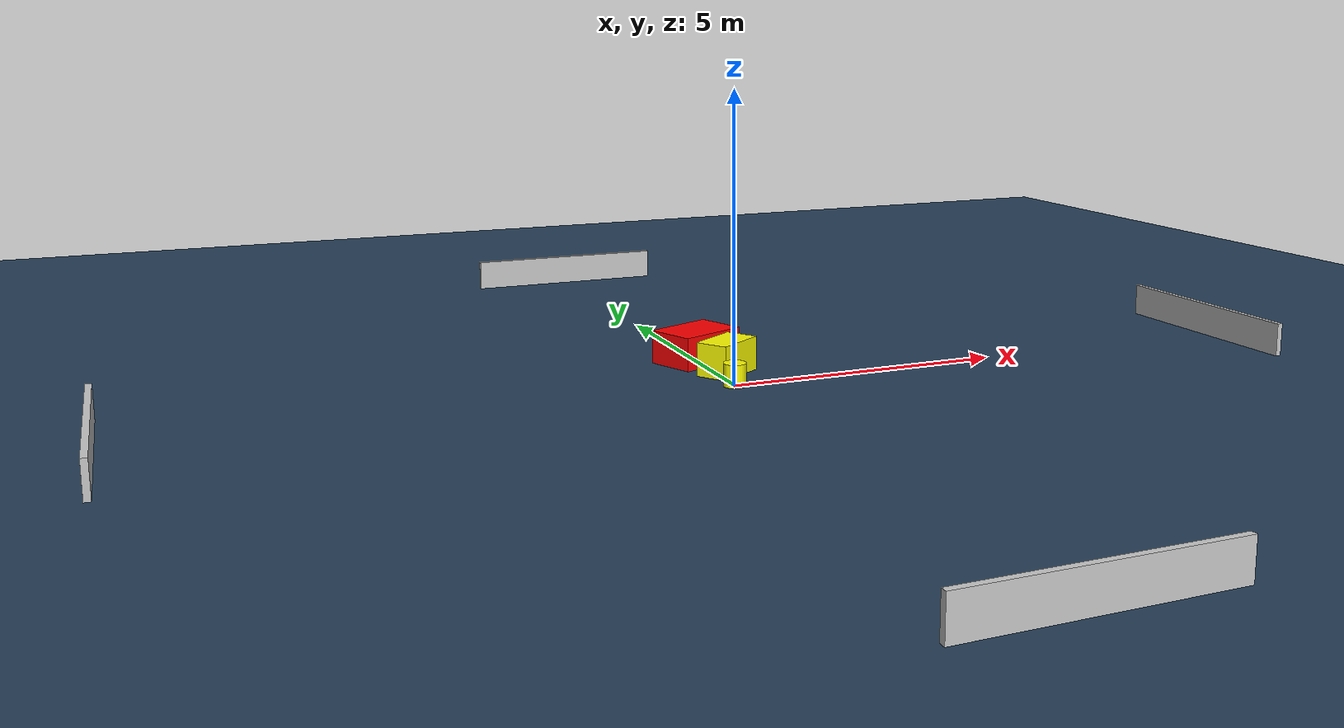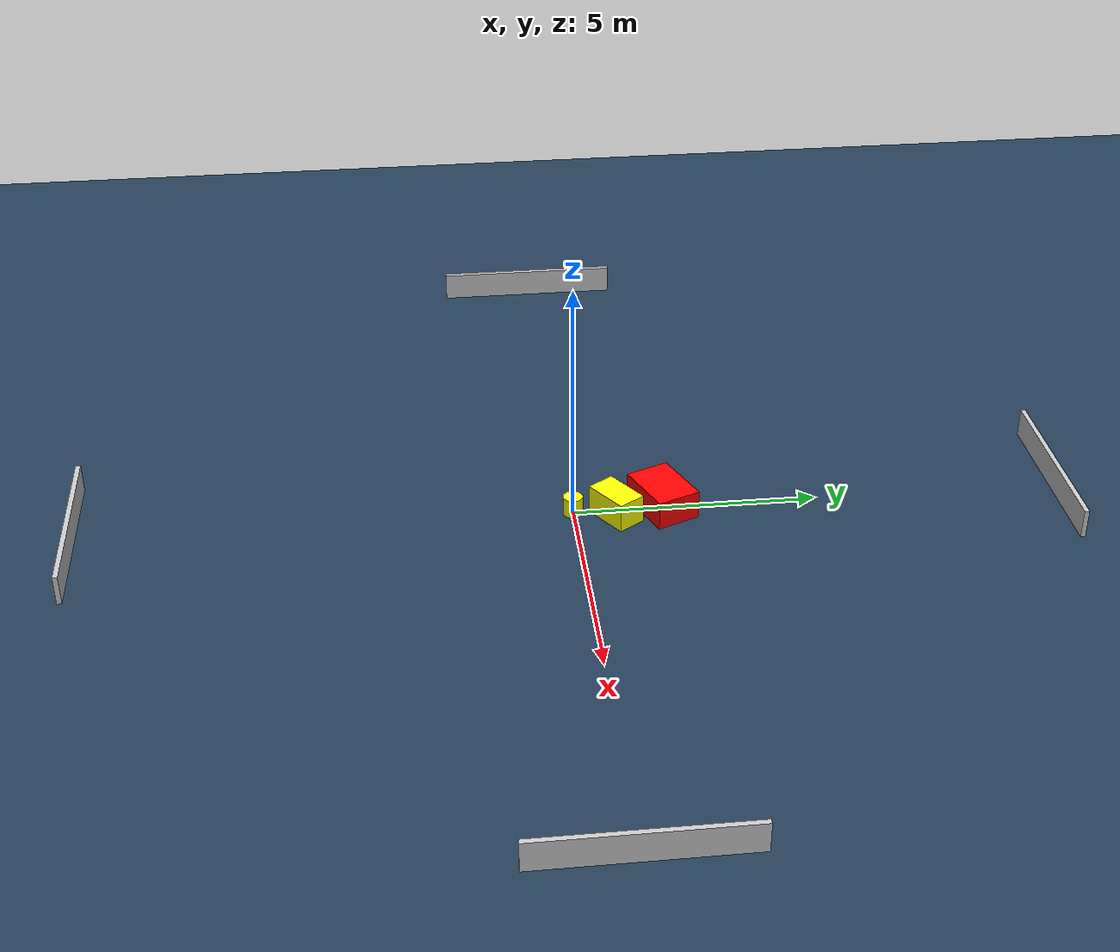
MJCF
<?xml version="1.0" ?>
<mujoco model="generated_environment">
  <option timestep="0.01" integrator="RK4" cone="elliptic"/>
  <default>
    <geom density="1"/>
  </default>
  <asset>
    <texture builtin="gradient" height="3072" name="skybox" rgb1="0.3 0.5 0.7" rgb2="0 0 0" type="skybox" width="512"/>
    <texture builtin="checker" height="300" name="groundplane" rgb1="0.2 0.3 0.4" rgb2="0.1 0.2 0.3" type="2d" width="300"/>
    <material name="groundplane" reflectance="0.2" texrepeat="5 5" texture="groundplane"/>
  </asset>
  <worldbody>
    <light dir="0 0 -1" directional="true" pos="0 0 1.5"/>
    <geom condim="3" friction="0.5 0.005 0.001" material="groundplane" name="floor" pos="0 0 0" size="0 0 0.05" type="plane"/>
    <body name="walls">
      <geom name="wall_1" condim="4" pos="-10.0 0.0 0.3" rgba="0.800000011920929 0.800000011920929 0.800000011920929 1.0" size="0.05 2.0 0.3" type="box"/>
      <geom name="wall_2" condim="4" pos="10.0 0.0 0.3" rgba="0.800000011920929 0.800000011920929 0.800000011920929 1.0" size="0.05 2.0 0.3" type="box"/>
      <geom name="wall_3" condim="4" pos="0.0 -10.0 0.3" rgba="0.800000011920929 0.800000011920929 0.800000011920929 1.0" size="2.0 0.05 0.3" type="box"/>
      <geom name="wall_4" condim="4" pos="0.0 10.0 0.3" rgba="0.800000011920929 0.800000011920929 0.800000011920929 1.0" size="2.0 0.05 0.3" type="box"/>
    </body>
    <body name="robot">
      <joint name="joint_x" type="slide" pos="0 0 0" axis="1 0 0"/>
      <joint name="joint_y" type="slide" pos="0 0 0" axis="0 1 0"/>
      <geom name="robot" type="cylinder" pos="0.0 0.0 0.2" size="0.2 0.2 0.0" mass="5.0" friction="1.0 0.005 0.0001" condim="4" rgba="1.0 1.0 0.0 1.0"/>
    </body>
    <body name="obstacle_1_movable">
      <geom name="obstacle_1_movable" condim="4" pos="0.20926738568451816 0.8520094145929183 0.3" euler="0 0 303.69999803557687" friction="0.0 0.005 0.001" rgba="1.0 1.0 0.0 1.0" size="0.3017614441331436 0.4882460246561318 0.3" type="box" mass="0.1"/>
      <joint type="free"/>
    </body>
    <body name="obstacle_2_static">
      <geom name="obstacle_2_static" condim="4" pos="0.015795052528207686 1.8316523818185773 0.3" euler="0 0 292.48536583751525" friction="0.0 0.005 0.001" rgba="1.0 0.0 0.0 1.0" size="0.46235348050593633 0.6402084379191435 0.3" type="box"/>
    </body>
  </worldbody>
  <actuator>
    <motor name="actuator_x" joint="joint_x" gear="1" ctrlrange="-1 1"/>
    <motor name="actuator_y" joint="joint_y" gear="1" ctrlrange="-1 1"/>
  </actuator>
</mujoco>
